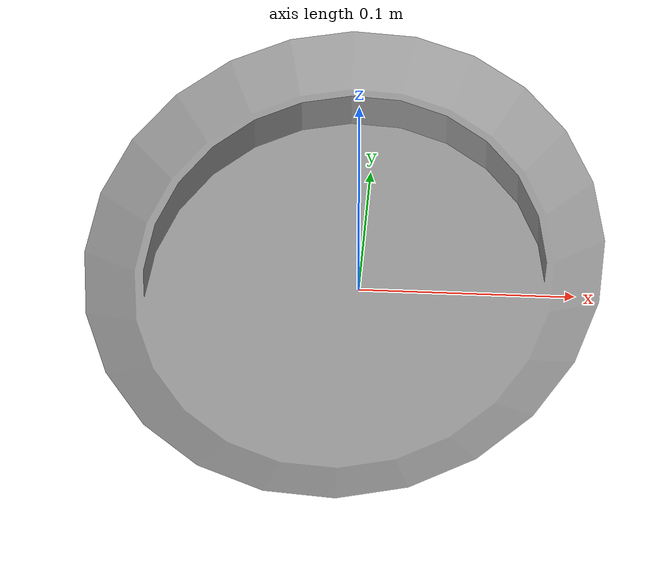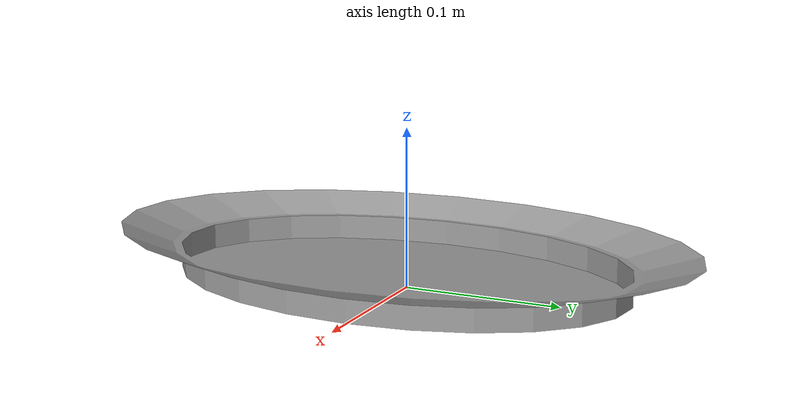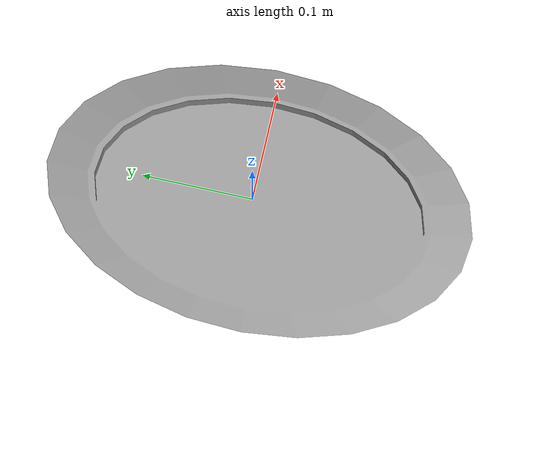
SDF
<?xml version='1.0'?>
<sdf version='1.6'>
  <model name='plate_2'>
    <link name='link_12'>
       <visual name='visual'>
        <pose frame=''>0 0 0 0 -0 0</pose>
        <geometry>
          <mesh>
            <uri>model://plate_2/meshes/plate_2.dae</uri>
            <scale>0.5 0.8 2.0</scale>
          </mesh>
        </geometry>
        <material>
          <lighting>1</lighting>
          <script>
            <uri>file://media/materials/scripts/gazebo.material</uri>
            <name>Gazebo/Grey</name>
          </script>
          <ambient>0.694 0.694 0.694 1</ambient>
          <diffuse>0.694 0.694 0.694 1</diffuse>
          <specular>0.01 0.01 0.01 1</specular>
          <emissive>0 0 0 1</emissive>
          <shader type='vertex'>
            <normal_map>__default__</normal_map>
          </shader>
        </material>
        <cast_shadows>1</cast_shadows>
        <transparency>0</transparency>
      </visual>

      <collision name='collision'>
        <laser_retro>0</laser_retro>
        <max_contacts>10</max_contacts>
        <pose frame=''>0 0 0 0 -0 0</pose>
        <geometry>
          <mesh>
            <uri>model://plate_2/meshes/plate_2.dae</uri>
            <scale>0.5 0.8 2.0</scale>
          </mesh>
        </geometry>

        <surface>
          <contact>
            <ode>
              <!-- Stiff spring‑damper contact so thin plates don’t interpenetrate -->
              <kp>8e5</kp>
              <kd>1.0</kd>
              <max_vel>0.2</max_vel>
              <min_depth>0.0005</min_depth>
            </ode>
          </contact>

          <friction>
            <ode>
              <mu>0.6</mu>
              <mu2>0.6</mu2>
            </ode>
          </friction>
        </surface>

      </collision>

      <!-- ========= INERTIA ========= -->
      <inertial>
        <!-- Typical ceramic plate mass -->
        <mass>1</mass>
        <inertia>
          <!-- Solid disk inertia: I = ½ m r²; r = 0.13 m → I ≈ 0.003 kg·m² -->
          <ixx>0.003</ixx>
          <iyy>0.003</iyy>
          <izz>0.006</izz>
          <ixy>0.0</ixy>
          <ixz>0.0</ixz>
          <iyz>0.0</iyz>
        </inertia>
      </inertial>

    </link>
    <static>0</static>
    <allow_auto_disable>1</allow_auto_disable>
  </model>
</sdf>
